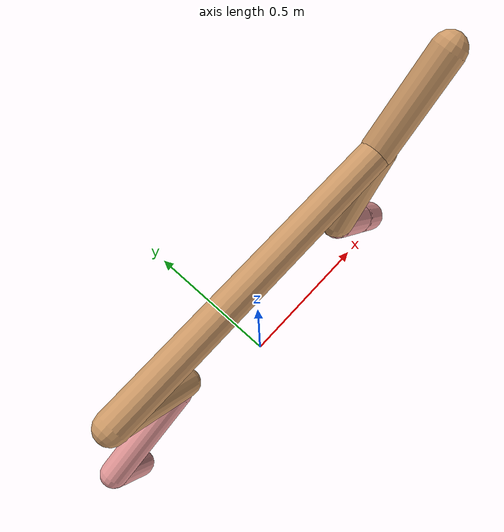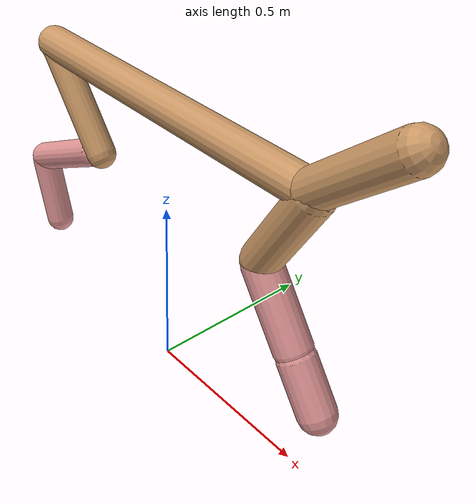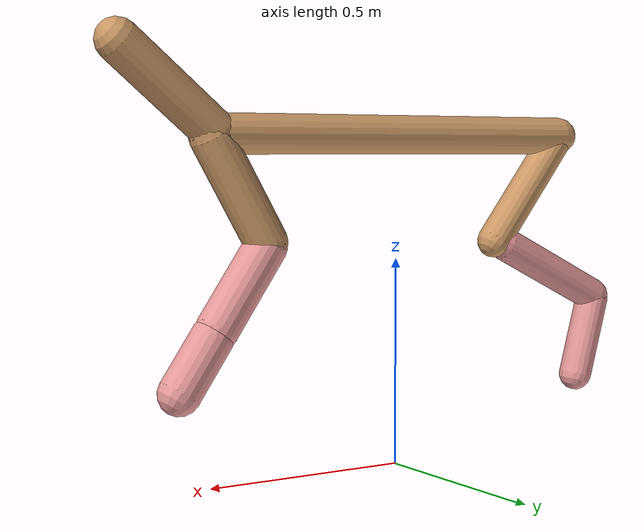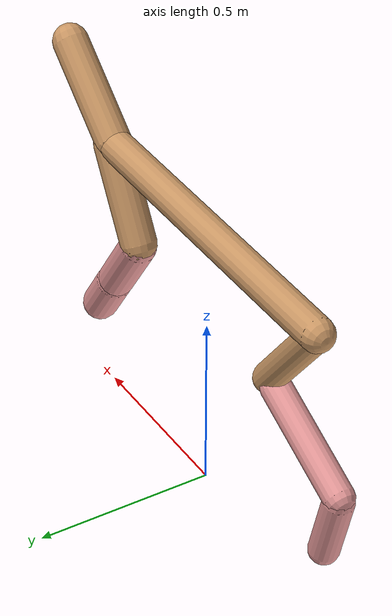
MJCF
<mujoco model="cheetah">
  <compiler angle="radian" coordinate="local" inertiafromgeom="true" settotalmass="14" />
  <default>
    <joint armature=".1" damping=".01" limited="true" solimplimit="0 .8 .03" solreflimit=".02 1" stiffness="8" />
    <geom conaffinity="0" condim="3" contype="1" friction="0.8 .1 .1" rgba="0.8 0.6 .4 1" solimp="0.0 0.8 0.01" solref="0.02 1" />
    <motor ctrllimited="true" ctrlrange="-1 1" />
  </default>
  <size nstack="300000" nuser_geom="1" />
  <option gravity="0 0 -9.81" timestep="0.01" />
  <worldbody>
    <body name="torso" pos="0.0 0.0 0.7960460232517845">
      <joint armature="0" axis="1 0 0" damping="0" limited="false" name="ignorex" pos="0 0 0" stiffness="0" type="slide" />
      <joint armature="0" axis="0 0 1" damping="0" limited="false" name="ignorez" pos="0 0 0" stiffness="0" type="slide" />
      <joint armature="0" axis="0 1 0" damping="0" limited="false" name="ignorey" pos="0 0 0" stiffness="0" type="hinge" />
      <geom fromto="-0.5 0.0 0.0 0.4957127692462556 0.0 0.0" name="torso" size="0.04650473723160441" type="capsule" />
      <geom axisangle="0 1 0 .87" name="head" pos="0.5957127692462556 0.0 0.1" size="0.0495078338090987 0.15" type="capsule" />

      <body name="bthigh" pos="-.5 0 0">
        <joint axis="0 1 0" damping="6" name="bthigh" pos="0 0 0" range="-.52 1.05" stiffness="240" type="hinge" />
        <geom axisangle="0 1 0 -3.8" name="bthigh" pos="0.107195968319871 0.0 -0.13935475881583229" size="0.04165355466324996 0.1568022655690752" type="capsule" />
        <body name="bshin" pos="0.17439193663974195 0.0 -0.26870951763166456">
          <joint axis="0 1 0" damping="4.5" name="bshin" pos="0 0 0" range="-.785 .785" stiffness="180" type="hinge" />
          <geom axisangle="0 1 0 -2.03" name="bshin" pos="-0.1509202764555686 0.0 -0.0754601382277843" rgba="0.9 0.6 0.6 1" size="0.04165355466324996 0.1622092402438709" type="capsule" />
          <body name="bfoot" pos="-0.3018405529111372 0.0 -0.1509202764555686">
            <joint axis="0 1 0" damping="3" name="bfoot" pos="0 0 0" range="-.4 .785" stiffness="120" type="hinge" />
            <geom axisangle="0 1 0 -.27" name="bfoot" pos="0.03226067545468585 0.0 -0.10430951730348424" rgba="0.9 0.6 0.6 1" size="0.04165355466324996 0.1016511238861591" type="capsule" />
            <inertial mass="10" />
          </body>
        </body>
      </body>
      <body name="fthigh" pos="0.4957127692462556 0.0 0.0">
        <joint axis="0 1 0" damping="4.5" name="fthigh" pos="0 0 0" range="-1.5 0.8" stiffness="180" type="hinge" />
        <geom axisangle="0 1 0 .52" name="fthigh" pos="-0.07338611733870054 0.0 -0.1258047725806295" size="0.0503161389483321 0.13972020649565745" type="capsule" />
        <body name="fshin" pos="-0.14677223467740108 0.0 -0.251609545161259">
          <joint axis="0 1 0" damping="3" name="fshin" pos="0 0 0" range="-1.2 1.1" stiffness="120" type="hinge" />
          <geom axisangle="0 1 0 -.6" name="fshin" pos="0.06813586050261383 0.0 -0.09434196069592683" rgba="0.9 0.6 0.6 1" size="0.0503161389483321 0.11135595404917059" type="capsule" />
          <body name="ffoot" pos="0.13627172100522766 0.0 -0.18868392139185367">
            <joint axis="0 1 0" damping="1.5" name="ffoot" pos="0 0 0" range="-3.1 -0.3" stiffness="60" type="hinge" />
            <geom axisangle="0 1 0 -.6" name="ffoot" pos="0.046912632988274236 0.0 -0.07297520687064882" rgba="0.9 0.6 0.6 1" size="0.0503161389483321 0.07353695078718814" type="capsule" />
            <inertial mass="10" />
          </body>
        </body>
      </body>
    </body>
  </worldbody>
  <actuator>
    <motor gear="120" joint="bthigh" name="bthigh" />
    <motor gear="90" joint="bshin" name="bshin" />
    <motor gear="60" joint="bfoot" name="bfoot" />
    <motor gear="120" joint="fthigh" name="fthigh" />
    <motor gear="60" joint="fshin" name="fshin" />
    <motor gear="30" joint="ffoot" name="ffoot" />
  </actuator>
</mujoco>
